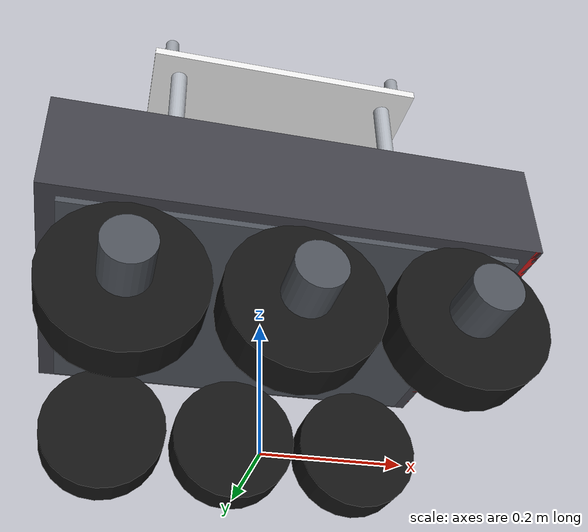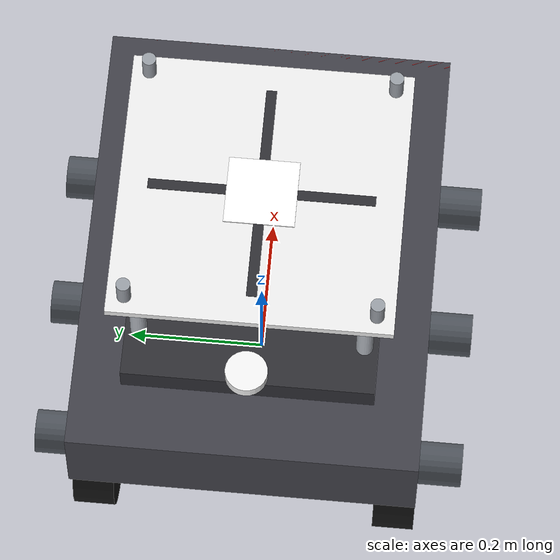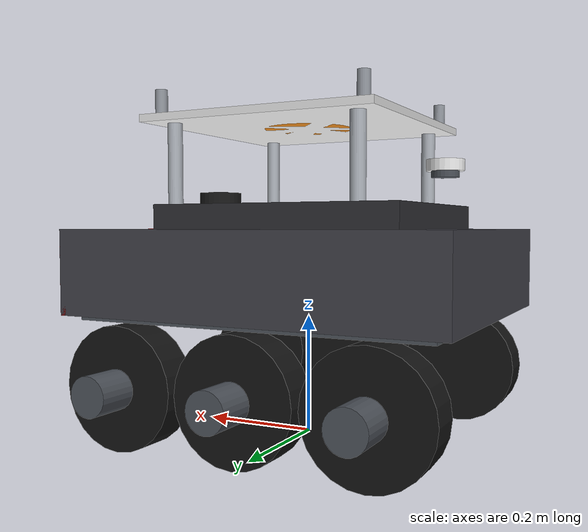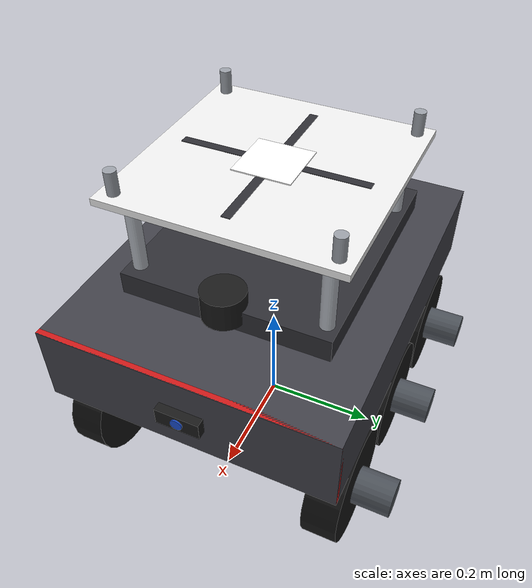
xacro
<?xml version="1.0"?>
<robot name="windmill_ugv" xmlns:xacro="http://www.ros.org/wiki/xacro">

  <!-- Order matters: dimensions first, then everything else -->
  <xacro:include filename="$(find windmill_robot_description)/urdf/dimensions.xacro"/>
  <xacro:include filename="$(find windmill_robot_description)/urdf/materials.xacro"/>
  <xacro:include filename="$(find windmill_robot_description)/urdf/chassis.xacro"/>
  <xacro:include filename="$(find windmill_robot_description)/urdf/wheel.xacro"/>
  <xacro:include filename="$(find windmill_robot_description)/urdf/suspension.xacro"/>
  <xacro:include filename="$(find windmill_robot_description)/urdf/landing_pad.xacro"/>
  <xacro:include filename="$(find windmill_robot_description)/urdf/sensors.xacro"/>
  <xacro:include filename="$(find windmill_robot_description)/urdf/electronics.xacro"/>
  <xacro:include filename="$(find windmill_robot_description)/urdf/gazebo.xacro"/>

  <xacro:drive_wheel name="front_left"
    x="${wheel_x_front}"  y="${wheel_y_left}"  z="${wheel_center_z}" side="left" motor_sign="1"/>

  <xacro:drive_wheel name="middle_left"
    x="${wheel_x_middle}" y="${wheel_y_left}"  z="${wheel_center_z}" side="left" motor_sign="1"/>

  <xacro:drive_wheel name="rear_left"
    x="${wheel_x_rear}"   y="${wheel_y_left}"  z="${wheel_center_z}" side="left" motor_sign="1"/>

  <xacro:drive_wheel name="front_right"
    x="${wheel_x_front}"  y="${wheel_y_right}" z="${wheel_center_z}" side="right" motor_sign="-1"/>

  <xacro:drive_wheel name="middle_right"
    x="${wheel_x_middle}" y="${wheel_y_right}" z="${wheel_center_z}" side="right" motor_sign="-1"/>

  <xacro:drive_wheel name="rear_right"
    x="${wheel_x_rear}"   y="${wheel_y_right}" z="${wheel_center_z}" side="right" motor_sign="-1"/>

  <!-- Wheel centre frames (for future odometry / suspension work) -->
  <link name="front_left_wheel_frame"/>
  <joint name="front_left_wheel_frame_joint" type="fixed">
    <parent link="front_left_wheel"/><child link="front_left_wheel_frame"/>
    <origin xyz="0 0 0" rpy="0 0 0"/>
  </joint>

  <link name="middle_left_wheel_frame"/>
  <joint name="middle_left_wheel_frame_joint" type="fixed">
    <parent link="middle_left_wheel"/><child link="middle_left_wheel_frame"/>
    <origin xyz="0 0 0" rpy="0 0 0"/>
  </joint>

  <link name="rear_left_wheel_frame"/>
  <joint name="rear_left_wheel_frame_joint" type="fixed">
    <parent link="rear_left_wheel"/><child link="rear_left_wheel_frame"/>
    <origin xyz="0 0 0" rpy="0 0 0"/>
  </joint>

  <link name="front_right_wheel_frame"/>
  <joint name="front_right_wheel_frame_joint" type="fixed">
    <parent link="front_right_wheel"/><child link="front_right_wheel_frame"/>
    <origin xyz="0 0 0" rpy="0 0 0"/>
  </joint>

  <link name="middle_right_wheel_frame"/>
  <joint name="middle_right_wheel_frame_joint" type="fixed">
    <parent link="middle_right_wheel"/><child link="middle_right_wheel_frame"/>
    <origin xyz="0 0 0" rpy="0 0 0"/>
  </joint>

  <link name="rear_right_wheel_frame"/>
  <joint name="rear_right_wheel_frame_joint" type="fixed">
    <parent link="rear_right_wheel"/><child link="rear_right_wheel_frame"/>
    <origin xyz="0 0 0" rpy="0 0 0"/>
  </joint>

</robot>

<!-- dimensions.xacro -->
<robot xmlns:xacro="http://www.ros.org/wiki/xacro" name="windmill_ugv_dimensions">
  <!-- Note: pi is built into xacro — do not redefine it -->

  <!-- track_width: centre-to-centre distance between left and right wheels -->
  <xacro:property name="track_width" value="0.440"/>

  <xacro:property name="chassis_length"    value="0.650"/>
  <xacro:property name="chassis_width"     value="0.500"/>
  <xacro:property name="chassis_height"    value="0.140"/>
  <xacro:property name="chassis_bottom_z"  value="0.210"/>
  <xacro:property name="chassis_top_z"     value="${chassis_bottom_z + chassis_height}"/>
  <xacro:property name="chassis_centre_z"  value="${chassis_bottom_z + chassis_height/2.0}"/>

  <!-- Underbody skid plate (thin protective plate under chassis) -->
  <xacro:property name="underbody_thickness" value="0.008"/>
  <xacro:property name="underbody_length"    value="0.600"/>
  <xacro:property name="underbody_width"     value="0.460"/>

  <xacro:property name="wheel_radius"    value="0.100"/>
  <xacro:property name="wheel_width"     value="0.060"/>
  <xacro:property name="wheel_center_z"  value="${wheel_radius}"/>

  <!-- Wheel positions -->
  <xacro:property name="wheel_x_front"  value=" 0.210"/>
  <xacro:property name="wheel_x_middle" value=" 0.000"/>
  <xacro:property name="wheel_x_rear"   value="-0.210"/>
  <xacro:property name="wheel_y_left"   value=" 0.220"/>  <!-- half track + half wheel_width -->
  <xacro:property name="wheel_y_right"  value="-0.220"/>

  <!-- Ground clearance (bottom of chassis above ground) -->
  <xacro:property name="ground_clearance" value="${chassis_bottom_z}"/>

  <xacro:property name="landing_pad_length"    value="0.400"/>
  <xacro:property name="landing_pad_width"     value="0.400"/>
  <xacro:property name="landing_pad_thickness" value="0.012"/>
  <xacro:property name="landing_pad_z"         value="0.520"/>  <!-- underside of pad above ground -->

  <!-- Support posts: from chassis top to pad underside -->
  <xacro:property name="landing_post_radius"   value="0.012"/>
  <xacro:property name="landing_post_height"   value="${landing_pad_z - chassis_top_z}"/>
  <xacro:property name="landing_post_offset_x" value="0.160"/>
  <xacro:property name="landing_post_offset_y" value="0.160"/>

  <!-- Landing guides (corner bumpers on pad surface) -->
  <xacro:property name="landing_guide_radius"   value="0.010"/>
  <xacro:property name="landing_guide_height"   value="0.040"/>
  <xacro:property name="landing_guide_offset_x" value="0.175"/>
  <xacro:property name="landing_guide_offset_y" value="0.175"/>

  <!-- ============================================================
       CHARGING COIL + FIDUCIAL MARKER
  ============================================================ -->
  <xacro:property name="charging_coil_diameter"  value="0.150"/>
  <xacro:property name="charging_coil_thickness" value="0.006"/>
  <xacro:property name="fiducial_marker_size"     value="0.100"/>
  <xacro:property name="fiducial_marker_thickness" value="0.002"/>

  <!-- ============================================================
       SENSORS
  ============================================================ -->
  <!-- LiDAR: front-centre, above chassis top, unobstructed 360 deg -->
  <xacro:property name="lidar_x"       value="0.180"/>
  <xacro:property name="lidar_z"       value="${chassis_top_z + 0.060}"/>
  <xacro:property name="lidar_radius"  value="0.037"/>
  <xacro:property name="lidar_height_dim" value="0.050"/>

  <!-- Camera: front face of chassis, pointing forward -->
  <xacro:property name="camera_x"     value="0.330"/>
  <xacro:property name="camera_z"     value="${chassis_centre_z + 0.020}"/>

  <!-- IMU: chassis centre -->
  <xacro:property name="imu_z"        value="${chassis_centre_z}"/>

  <!-- GPS: rear top, clear sky view, away from landing pad centre -->
  <xacro:property name="gps_x"        value="-0.240"/>
  <xacro:property name="gps_z"        value="${chassis_top_z + 0.100}"/>

  <!-- Sensor mast (cylinder holding LiDAR above chassis) -->
  <xacro:property name="sensor_mast_radius" value="0.020"/>
  <xacro:property name="sensor_mast_height" value="0.040"/>

  <!-- ============================================================
       ELECTRONICS ENVELOPES
  ============================================================ -->
  <xacro:property name="jetson_length" value="0.180"/>
  <xacro:property name="jetson_width"  value="0.130"/>
  <xacro:property name="jetson_height" value="0.060"/>

  <xacro:property name="battery_length" value="0.220"/>
  <xacro:property name="battery_width"  value="0.120"/>
  <xacro:property name="battery_height" value="0.070"/>

  <xacro:property name="arduino_mega_length" value="0.110"/>
  <xacro:property name="arduino_mega_width"  value="0.060"/>
  <xacro:property name="arduino_mega_height" value="0.025"/>

  <xacro:property name="arduino_nano_length" value="0.045"/>
  <xacro:property name="arduino_nano_width"  value="0.020"/>
  <xacro:property name="arduino_nano_height" value="0.010"/>

  <xacro:property name="motor_driver_length" value="0.090"/>
  <xacro:property name="motor_driver_width"  value="0.060"/>
  <xacro:property name="motor_driver_height" value="0.025"/>

  <xacro:property name="pdu_length" value="0.100"/>
  <xacro:property name="pdu_width"  value="0.070"/>
  <xacro:property name="pdu_height" value="0.025"/>

  <xacro:property name="buck_length" value="0.060"/>
  <xacro:property name="buck_width"  value="0.040"/>
  <xacro:property name="buck_height" value="0.020"/>

  <xacro:property name="boost_length" value="0.060"/>
  <xacro:property name="boost_width"  value="0.040"/>
  <xacro:property name="boost_height" value="0.020"/>

  <xacro:property name="ups_length" value="0.100"/>
  <xacro:property name="ups_width"  value="0.070"/>
  <xacro:property name="ups_height" value="0.025"/>

  <xacro:property name="enclosure_length" value="0.420"/>
  <xacro:property name="enclosure_width"  value="0.360"/>
  <xacro:property name="enclosure_height" value="0.110"/>

  <!-- Motor placeholder -->
  <xacro:property name="motor_radius" value="0.032"/>
  <xacro:property name="motor_length" value="0.065"/>

  <!-- ============================================================
       MASS ASSUMPTIONS [kg]
       Total target: ~22 kg
  ============================================================ -->
  <xacro:property name="chassis_mass"       value="6.80"/>
  <xacro:property name="underbody_mass"     value="0.60"/>
  <xacro:property name="wheel_mass"         value="0.80"/>
  <xacro:property name="motor_mass"         value="0.55"/>
  <xacro:property name="landing_pad_mass"   value="0.80"/>
  <xacro:property name="landing_post_mass"  value="0.08"/>
  <xacro:property name="landing_guide_mass" value="0.03"/>
  <xacro:property name="battery_mass"       value="2.20"/>
  <xacro:property name="jetson_mass"        value="0.50"/>
  <xacro:property name="arduino_mega_mass"  value="0.04"/>
  <xacro:property name="arduino_nano_mass"  value="0.01"/>
  <xacro:property name="motor_driver_mass"  value="0.15"/>
  <xacro:property name="pdu_mass"           value="0.12"/>
  <xacro:property name="buck_mass"          value="0.08"/>
  <xacro:property name="boost_mass"         value="0.08"/>
  <xacro:property name="ups_mass"           value="0.15"/>
  <xacro:property name="lidar_mass"         value="0.35"/>
  <xacro:property name="camera_mass"        value="0.10"/>
  <xacro:property name="imu_mass"           value="0.03"/>
  <xacro:property name="gps_mass"           value="0.08"/>
  <xacro:property name="charging_coil_mass" value="0.20"/>
  <xacro:property name="fiducial_mass"      value="0.005"/>
  <xacro:property name="sensor_mount_mass"  value="0.15"/>
  <xacro:property name="misc_mass"          value="0.90"/>

</robot>

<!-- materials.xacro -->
<!--
  materials.xacro
  ===============
  Visual material definitions for RViz and Gazebo.
-->
<robot xmlns:xacro="http://www.ros.org/wiki/xacro" name="windmill_ugv_materials">

  <!-- Chassis / structure -->
  <material name="chassis_gray">
    <color rgba="0.25 0.25 0.28 1.0"/>
  </material>
  <material name="metal">
    <color rgba="0.60 0.62 0.65 1.0"/>
  </material>
  <material name="metal_dark">
    <color rgba="0.30 0.32 0.35 1.0"/>
  </material>

  <!-- Wheels -->
  <material name="rubber_black">
    <color rgba="0.08 0.08 0.08 1.0"/>
  </material>
  <material name="wheel_hub">
    <color rgba="0.50 0.50 0.55 1.0"/>
  </material>

  <!-- Landing platform -->
  <material name="landing_white">
    <color rgba="0.92 0.92 0.92 1.0"/>
  </material>
  <material name="landing_dark">
    <color rgba="0.18 0.18 0.20 1.0"/>
  </material>
  <material name="post_silver">
    <color rgba="0.70 0.72 0.75 1.0"/>
  </material>

  <!-- Sensors -->
  <material name="sensor_black">
    <color rgba="0.10 0.10 0.10 1.0"/>
  </material>
  <material name="sensor_blue">
    <color rgba="0.10 0.30 0.80 1.0"/>
  </material>

  <!-- Electronics -->
  <material name="electronics_green">
    <color rgba="0.10 0.50 0.20 1.0"/>
  </material>
  <material name="electronics_blue">
    <color rgba="0.10 0.20 0.70 1.0"/>
  </material>
  <material name="battery_color">
    <color rgba="0.15 0.35 0.65 1.0"/>
  </material>
  <material name="orange_comp">
    <color rgba="0.90 0.45 0.05 1.0"/>
  </material>

  <!-- Special -->
  <material name="coil_copper">
    <color rgba="0.85 0.50 0.10 1.0"/>
  </material>
  <material name="fiducial_white">
    <color rgba="1.00 1.00 1.00 1.0"/>
  </material>
  <material name="gps_white">
    <color rgba="0.95 0.95 0.95 1.0"/>
  </material>
  <material name="red_accent">
    <color rgba="0.80 0.10 0.10 1.0"/>
  </material>

</robot>

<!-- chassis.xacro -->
<robot xmlns:xacro="http://www.ros.org/wiki/xacro" name="windmill_ugv_chassis">

  <!-- Box inertia helper -->
  <xacro:macro name="inertial_box" params="mass x y z xyz:='0 0 0' rpy:='0 0 0'">
    <inertial>
      <origin xyz="${xyz}" rpy="${rpy}"/>
      <mass value="${mass}"/>
      <inertia
        ixx="${mass/12.0*(y*y+z*z)}" ixy="0" ixz="0"
        iyy="${mass/12.0*(x*x+z*z)}" iyz="0"
        izz="${mass/12.0*(x*x+y*y)}"/>
    </inertial>
  </xacro:macro>

  <!-- ============================================================
       base_footprint — Nav2 ground-plane reference
  ============================================================ -->
  <link name="base_footprint"/>

  <!-- ============================================================
       base_link — primary robot reference frame at ground level
  ============================================================ -->
  <link name="base_link">
    <!-- Physical chassis geometry lives here.
         Visual/collision centre at chassis_centre_z above ground. -->
    <xacro:inertial_box
      mass="${chassis_mass}"
      x="${chassis_length}" y="${chassis_width}" z="${chassis_height}"
      xyz="0 0 ${chassis_centre_z}"/>

    <!-- Main body box -->
    <visual>
      <origin xyz="0 0 ${chassis_centre_z}" rpy="0 0 0"/>
      <geometry>
        <box size="${chassis_length} ${chassis_width} ${chassis_height}"/>
      </geometry>
      <material name="chassis_gray"/>
    </visual>
    <collision>
      <origin xyz="0 0 ${chassis_centre_z}" rpy="0 0 0"/>
      <geometry>
        <box size="${chassis_length} ${chassis_width} ${chassis_height}"/>
      </geometry>
    </collision>

    <!-- Front accent stripe (visual only, makes front direction obvious) -->
    <visual>
      <origin xyz="${chassis_length/2.0 - 0.005} 0 ${chassis_centre_z}" rpy="0 0 0"/>
      <geometry>
        <box size="0.010 ${chassis_width} ${chassis_height}"/>
      </geometry>
      <material name="red_accent"/>
    </visual>

  </link>

  <joint name="base_footprint_joint" type="fixed">
    <parent link="base_footprint"/>
    <child  link="base_link"/>
    <origin xyz="0 0 0" rpy="0 0 0"/>
  </joint>

  <!-- chassis_link: fixed alias of base_link (Nav2 compatibility) -->
  <link name="chassis_link">
    <inertial>
      <origin xyz="0 0 0"/>
      <mass value="0.001"/>
      <inertia ixx="0.0001" ixy="0" ixz="0" iyy="0.0001" iyz="0" izz="0.0001"/>
    </inertial>
  </link>
  <joint name="base_to_chassis" type="fixed">
    <parent link="base_link"/>
    <child  link="chassis_link"/>
    <origin xyz="0 0 0" rpy="0 0 0"/>
  </joint>

  <link name="underbody_skid_link">
    <xacro:inertial_box
      mass="${underbody_mass}"
      x="${underbody_length}" y="${underbody_width}" z="${underbody_thickness}"
      xyz="0 0 ${chassis_bottom_z - underbody_thickness/2.0}"/>
    <visual>
      <origin xyz="0 0 ${chassis_bottom_z - underbody_thickness/2.0}"/>
      <geometry>
        <box size="${underbody_length} ${underbody_width} ${underbody_thickness}"/>
      </geometry>
      <material name="metal_dark"/>
    </visual>
    <collision>
      <origin xyz="0 0 ${chassis_bottom_z - underbody_thickness/2.0}"/>
      <geometry>
        <box size="${underbody_length} ${underbody_width} ${underbody_thickness}"/>
      </geometry>
    </collision>
  </link>
  <joint name="underbody_skid_joint" type="fixed">
    <parent link="base_link"/>
    <child  link="underbody_skid_link"/>
    <origin xyz="0 0 0" rpy="0 0 0"/>
  </joint>

  <link name="electronics_enclosure_link">
    <inertial>
      <origin xyz="0 0 0"/>
      <mass value="${misc_mass}"/>
      <inertia
        ixx="${misc_mass/12.0*(enclosure_width*enclosure_width + 0.040*0.040)}"
        ixy="0" ixz="0"
        iyy="${misc_mass/12.0*(enclosure_length*enclosure_length + 0.040*0.040)}"
        iyz="0"
        izz="${misc_mass/12.0*(enclosure_length*enclosure_length + enclosure_width*enclosure_width)}"/>
    </inertial>
    <visual>
      <origin xyz="0 0 0.020"/>
      <geometry>
        <box size="${enclosure_length} ${enclosure_width} 0.040"/>
      </geometry>
      <material name="landing_dark"/>
    </visual>
    <!-- No collision — sits inside chassis envelope -->
  </link>
  <joint name="electronics_enclosure_joint" type="fixed">
    <parent link="base_link"/>
    <child  link="electronics_enclosure_link"/>
    <origin xyz="-0.020 0 ${chassis_top_z}" rpy="0 0 0"/>
  </joint>

</robot>

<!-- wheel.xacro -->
<robot xmlns:xacro="http://www.ros.org/wiki/xacro" name="windmill_ugv_wheels">

  <!-- Cylinder inertia helper (axis along Y after visual rotation) -->
  <xacro:macro name="wheel_inertial" params="mass radius width">
    <inertial>
      <origin xyz="0 0 0" rpy="0 0 0"/>
      <mass value="${mass}"/>
      <inertia
        ixx="${mass/12.0*(3.0*radius*radius + width*width)}"
        ixy="0" ixz="0"
        iyy="${mass/2.0*radius*radius}"
        iyz="0"
        izz="${mass/12.0*(3.0*radius*radius + width*width)}"/>
    </inertial>
  </xacro:macro>

  <xacro:macro name="drive_wheel" params="name x y z side motor_sign">

    <!-- TYRE: outer rubber cylinder, full radius -->
    <link name="${name}_wheel">
      <xacro:wheel_inertial mass="${wheel_mass}" radius="${wheel_radius}" width="${wheel_width}"/>

      <!-- Outer tyre — black rubber -->
      <visual>
        <origin xyz="0 0 0" rpy="${pi/2.0} 0 0"/>
        <geometry>
          <cylinder radius="${wheel_radius}" length="${wheel_width}"/>
        </geometry>
        <material name="rubber_black"/>
      </visual>

      <!-- Hub disc — silver, slightly inset -->
      <visual>
        <origin xyz="0 0 0" rpy="${pi/2.0} 0 0"/>
        <geometry>
          <cylinder radius="${wheel_radius * 0.55}" length="${wheel_width * 0.35}"/>
        </geometry>
        <material name="wheel_hub"/>
      </visual>

      <!-- Collision uses full tyre size -->
      <collision>
        <origin xyz="0 0 0" rpy="${pi/2.0} 0 0"/>
        <geometry>
          <cylinder radius="${wheel_radius}" length="${wheel_width}"/>
        </geometry>
      </collision>
    </link>

    <joint name="${name}_wheel_joint" type="continuous">
      <parent link="base_link"/>
      <child  link="${name}_wheel"/>
      <origin xyz="${x} ${y} ${z}" rpy="0 0 0"/>
      <axis xyz="0 1 0"/>
      <limit effort="20.0" velocity="25.0"/>
      <dynamics damping="0.15" friction="0.05"/>
    </joint>

    <!-- MOTOR PLACEHOLDER: fixed joint, inboard of wheel -->
    <link name="${name}_motor">
      <inertial>
        <origin xyz="0 0 0" rpy="${pi/2.0} 0 0"/>
        <mass value="${motor_mass}"/>
        <inertia
          ixx="${motor_mass/12.0*(motor_length*motor_length + 4*motor_radius*motor_radius)}"
          ixy="0" ixz="0"
          iyy="${motor_mass/2.0*motor_radius*motor_radius}"
          iyz="0"
          izz="${motor_mass/12.0*(motor_length*motor_length + 4*motor_radius*motor_radius)}"/>
      </inertial>
      <visual>
        <origin xyz="0 0 0" rpy="${pi/2.0} 0 0"/>
        <geometry>
          <cylinder radius="${motor_radius}" length="${motor_length}"/>
        </geometry>
        <material name="metal_dark"/>
      </visual>
      <collision>
        <origin xyz="0 0 0" rpy="${pi/2.0} 0 0"/>
        <geometry>
          <cylinder radius="${motor_radius}" length="${motor_length}"/>
        </geometry>
      </collision>
    </link>

    <joint name="${name}_motor_fixed_joint" type="fixed">
      <parent link="base_link"/>
      <child  link="${name}_motor"/>
      <origin
        xyz="${x} ${y + motor_sign * (0.5*wheel_width + 0.5*motor_length)} ${z}"
        rpy="0 0 0"/>
    </joint>

  </xacro:macro>

</robot>

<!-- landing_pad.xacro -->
<robot xmlns:xacro="http://www.ros.org/wiki/xacro" name="windmill_ugv_landing_pad">

  <!-- ============================================================
       LANDING PLATFORM SURFACE
  ============================================================ -->
  <link name="landing_platform_link">
    <inertial>
      <origin xyz="0 0 ${landing_pad_thickness/2.0}"/>
      <mass value="${landing_pad_mass}"/>
      <inertia
        ixx="${landing_pad_mass/12.0*(landing_pad_width*landing_pad_width + landing_pad_thickness*landing_pad_thickness)}"
        ixy="0" ixz="0"
        iyy="${landing_pad_mass/12.0*(landing_pad_length*landing_pad_length + landing_pad_thickness*landing_pad_thickness)}"
        iyz="0"
        izz="${landing_pad_mass/12.0*(landing_pad_length*landing_pad_length + landing_pad_width*landing_pad_width)}"/>
    </inertial>

    <!-- Main pad surface (white) -->
    <visual>
      <origin xyz="0 0 ${landing_pad_thickness/2.0}"/>
      <geometry>
        <box size="${landing_pad_length} ${landing_pad_width} ${landing_pad_thickness}"/>
      </geometry>
      <material name="landing_white"/>
    </visual>

    <!-- H-pattern markings on pad (visual only, 4 thin bars) -->
    <visual>
      <origin xyz="0 0 ${landing_pad_thickness + 0.001}"/>
      <geometry>
        <box size="${landing_pad_length * 0.80} 0.015 0.001"/>
      </geometry>
      <material name="landing_dark"/>
    </visual>
    <visual>
      <origin xyz="0 0 ${landing_pad_thickness + 0.001}"/>
      <geometry>
        <box size="0.015 ${landing_pad_width * 0.80} 0.001"/>
      </geometry>
      <material name="landing_dark"/>
    </visual>

    <collision>
      <origin xyz="0 0 ${landing_pad_thickness/2.0}"/>
      <geometry>
        <box size="${landing_pad_length} ${landing_pad_width} ${landing_pad_thickness}"/>
      </geometry>
    </collision>
  </link>

  <!-- Pad connects to base_link with its underside at landing_pad_z -->
  <joint name="landing_platform_joint" type="fixed">
    <parent link="base_link"/>
    <child  link="landing_platform_link"/>
    <origin xyz="0 0 ${landing_pad_z}" rpy="0 0 0"/>
  </joint>

  <xacro:macro name="landing_post" params="name px py">
    <link name="${name}_link">
      <inertial>
        <origin xyz="0 0 ${landing_post_height/2.0}"/>
        <mass value="${landing_post_mass}"/>
        <inertia
          ixx="${landing_post_mass/12.0*(3*landing_post_radius*landing_post_radius + landing_post_height*landing_post_height)}"
          ixy="0" ixz="0"
          iyy="${landing_post_mass/12.0*(3*landing_post_radius*landing_post_radius + landing_post_height*landing_post_height)}"
          iyz="0"
          izz="${0.5*landing_post_mass*landing_post_radius*landing_post_radius}"/>
      </inertial>
      <visual>
        <origin xyz="0 0 ${landing_post_height/2.0}"/>
        <geometry>
          <cylinder radius="${landing_post_radius}" length="${landing_post_height}"/>
        </geometry>
        <material name="post_silver"/>
      </visual>
      <collision>
        <origin xyz="0 0 ${landing_post_height/2.0}"/>
        <geometry>
          <cylinder radius="${landing_post_radius}" length="${landing_post_height}"/>
        </geometry>
      </collision>
    </link>
    <!-- Post base at chassis_top_z in base_link frame -->
    <joint name="${name}_joint" type="fixed">
      <parent link="base_link"/>
      <child  link="${name}_link"/>
      <origin xyz="${px} ${py} ${chassis_top_z}" rpy="0 0 0"/>
    </joint>
  </xacro:macro>

  <xacro:landing_post name="post_fl" px=" ${landing_post_offset_x}" py=" ${landing_post_offset_y}"/>
  <xacro:landing_post name="post_fr" px=" ${landing_post_offset_x}" py="-${landing_post_offset_y}"/>
  <xacro:landing_post name="post_rl" px="-${landing_post_offset_x}" py=" ${landing_post_offset_y}"/>
  <xacro:landing_post name="post_rr" px="-${landing_post_offset_x}" py="-${landing_post_offset_y}"/>

  <!-- ============================================================
       LANDING GUIDES (4x corner bumpers on pad surface)
  ============================================================ -->
  <xacro:macro name="landing_guide" params="name gx gy">
    <link name="${name}_link">
      <inertial>
        <origin xyz="0 0 ${landing_guide_height/2.0}"/>
        <mass value="${landing_guide_mass}"/>
        <inertia
          ixx="${landing_guide_mass/12.0*(3*landing_guide_radius*landing_guide_radius + landing_guide_height*landing_guide_height)}"
          ixy="0" ixz="0"
          iyy="${landing_guide_mass/12.0*(3*landing_guide_radius*landing_guide_radius + landing_guide_height*landing_guide_height)}"
          iyz="0"
          izz="${0.5*landing_guide_mass*landing_guide_radius*landing_guide_radius}"/>
      </inertial>
      <visual>
        <origin xyz="0 0 ${landing_guide_height/2.0}"/>
        <geometry>
          <cylinder radius="${landing_guide_radius}" length="${landing_guide_height}"/>
        </geometry>
        <material name="metal"/>
      </visual>
      <collision>
        <origin xyz="0 0 ${landing_guide_height/2.0}"/>
        <geometry>
          <cylinder radius="${landing_guide_radius}" length="${landing_guide_height}"/>
        </geometry>
      </collision>
    </link>
    <joint name="${name}_joint" type="fixed">
      <parent link="landing_platform_link"/>
      <child  link="${name}_link"/>
      <origin xyz="${gx} ${gy} ${landing_pad_thickness}" rpy="0 0 0"/>
    </joint>
  </xacro:macro>

  <xacro:landing_guide name="guide_fl" gx=" ${landing_guide_offset_x}" gy=" ${landing_guide_offset_y}"/>
  <xacro:landing_guide name="guide_fr" gx=" ${landing_guide_offset_x}" gy="-${landing_guide_offset_y}"/>
  <xacro:landing_guide name="guide_rl" gx="-${landing_guide_offset_x}" gy=" ${landing_guide_offset_y}"/>
  <xacro:landing_guide name="guide_rr" gx="-${landing_guide_offset_x}" gy="-${landing_guide_offset_y}"/>

  <!-- ============================================================
       CHARGING COIL PLACEHOLDER
       Embedded in pad surface, centred.
  ============================================================ -->
  <link name="charging_coil_link">
    <inertial>
      <origin xyz="0 0 ${charging_coil_thickness/2.0}"/>
      <mass value="${charging_coil_mass}"/>
      <inertia
        ixx="${charging_coil_mass/12.0*(3*(charging_coil_diameter/2.0)**2 + charging_coil_thickness**2)}"
        ixy="0" ixz="0"
        iyy="${charging_coil_mass/12.0*(3*(charging_coil_diameter/2.0)**2 + charging_coil_thickness**2)}"
        iyz="0"
        izz="${0.5*charging_coil_mass*(charging_coil_diameter/2.0)**2}"/>
    </inertial>
    <visual>
      <origin xyz="0 0 ${charging_coil_thickness/2.0}"/>
      <geometry>
        <cylinder radius="${charging_coil_diameter/2.0}" length="${charging_coil_thickness}"/>
      </geometry>
      <material name="coil_copper"/>
    </visual>
    <!-- No collision — embedded in pad -->
  </link>
  <joint name="charging_coil_joint" type="fixed">
    <parent link="landing_platform_link"/>
    <child  link="charging_coil_link"/>
    <origin xyz="0 0 0" rpy="0 0 0"/>
  </joint>

  <link name="charging_coil_frame"/>
  <joint name="charging_coil_frame_joint" type="fixed">
    <parent link="charging_coil_link"/>
    <child  link="charging_coil_frame"/>
    <origin xyz="0 0 ${charging_coil_thickness}" rpy="0 0 0"/>
  </joint>

  <!-- ============================================================
       FIDUCIAL MARKER PLACEHOLDER (AprilTag / ArUco)
  ============================================================ -->
  <link name="fiducial_marker_link">
    <inertial>
      <origin xyz="0 0 ${fiducial_marker_thickness/2.0}"/>
      <mass value="${fiducial_mass}"/>
      <inertia
        ixx="${fiducial_mass/12.0*(fiducial_marker_size*fiducial_marker_size + fiducial_marker_thickness*fiducial_marker_thickness)}"
        ixy="0" ixz="0"
        iyy="${fiducial_mass/12.0*(fiducial_marker_size*fiducial_marker_size + fiducial_marker_thickness*fiducial_marker_thickness)}"
        iyz="0"
        izz="${fiducial_mass/6.0*fiducial_marker_size*fiducial_marker_size}"/>
    </inertial>
    <visual>
      <origin xyz="0 0 ${fiducial_marker_thickness/2.0}"/>
      <geometry>
        <box size="${fiducial_marker_size} ${fiducial_marker_size} ${fiducial_marker_thickness}"/>
      </geometry>
      <material name="fiducial_white"/>
    </visual>
    <!-- No collision -->
  </link>
  <joint name="fiducial_marker_joint" type="fixed">
    <parent link="landing_platform_link"/>
    <child  link="fiducial_marker_link"/>
    <origin xyz="0 0 ${landing_pad_thickness + 0.001}" rpy="0 0 0"/>
  </joint>

  <link name="fiducial_marker_frame"/>
  <joint name="fiducial_marker_frame_joint" type="fixed">
    <parent link="fiducial_marker_link"/>
    <child  link="fiducial_marker_frame"/>
    <origin xyz="0 0 ${fiducial_marker_thickness}" rpy="0 0 0"/>
  </joint>

  <link name="drone_dock_frame"/>
  <joint name="drone_dock_frame_joint" type="fixed">
    <parent link="landing_platform_link"/>
    <child  link="drone_dock_frame"/>
    <origin xyz="0 0 ${landing_pad_thickness + 0.010}" rpy="0 0 0"/>
  </joint>

</robot>

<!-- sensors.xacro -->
<!--
  sensors.xacro
  =============
  LiDAR, camera, IMU, GPS — physical links and frames.
  Gazebo sensor plugins live in gazebo.xacro.

  All heights corrected to sit above chassis_top_z.
-->
<robot xmlns:xacro="http://www.ros.org/wiki/xacro" name="windmill_ugv_sensors">

  <!-- ============================================================
       SENSOR MAST (small cylinder on chassis top supporting LiDAR)
  ============================================================ -->
  <link name="sensor_mast_link">
    <inertial>
      <origin xyz="0 0 ${sensor_mast_height/2.0}"/>
      <mass value="${sensor_mount_mass}"/>
      <inertia
        ixx="${sensor_mount_mass/12.0*(3*sensor_mast_radius*sensor_mast_radius + sensor_mast_height*sensor_mast_height)}"
        ixy="0" ixz="0"
        iyy="${sensor_mount_mass/12.0*(3*sensor_mast_radius*sensor_mast_radius + sensor_mast_height*sensor_mast_height)}"
        iyz="0"
        izz="${0.5*sensor_mount_mass*sensor_mast_radius*sensor_mast_radius}"/>
    </inertial>
    <visual>
      <origin xyz="0 0 ${sensor_mast_height/2.0}"/>
      <geometry>
        <cylinder radius="${sensor_mast_radius}" length="${sensor_mast_height}"/>
      </geometry>
      <material name="metal_dark"/>
    </visual>
    <collision>
      <origin xyz="0 0 ${sensor_mast_height/2.0}"/>
      <geometry>
        <cylinder radius="${sensor_mast_radius}" length="${sensor_mast_height}"/>
      </geometry>
    </collision>
  </link>
  <joint name="sensor_mast_joint" type="fixed">
    <parent link="base_link"/>
    <child  link="sensor_mast_link"/>
    <origin xyz="${lidar_x} 0 ${chassis_top_z}" rpy="0 0 0"/>
  </joint>

  <link name="lidar_link">
    <inertial>
      <origin xyz="0 0 0"/>
      <mass value="${lidar_mass}"/>
      <inertia
        ixx="${lidar_mass/12.0*(3*lidar_radius*lidar_radius + lidar_height_dim*lidar_height_dim)}"
        ixy="0" ixz="0"
        iyy="${lidar_mass/12.0*(3*lidar_radius*lidar_radius + lidar_height_dim*lidar_height_dim)}"
        iyz="0"
        izz="${0.5*lidar_mass*lidar_radius*lidar_radius}"/>
    </inertial>
    <visual>
      <geometry>
        <cylinder radius="${lidar_radius}" length="${lidar_height_dim}"/>
      </geometry>
      <material name="sensor_black"/>
    </visual>
    <collision>
      <geometry>
        <cylinder radius="${lidar_radius}" length="${lidar_height_dim}"/>
      </geometry>
    </collision>
  </link>
  <joint name="lidar_joint" type="fixed">
    <parent link="base_link"/>
    <child  link="lidar_link"/>
    <origin xyz="${lidar_x} 0 ${chassis_top_z + sensor_mast_height}" rpy="0 0 0"/>
  </joint>

  <!-- lidar_frame: sensor measurement origin (top of cylinder) -->
  <link name="lidar_frame"/>
  <joint name="lidar_frame_joint" type="fixed">
    <parent link="lidar_link"/>
    <child  link="lidar_frame"/>
    <origin xyz="0 0 ${lidar_height_dim/2.0}" rpy="0 0 0"/>
  </joint>

  <!-- ============================================================
       CAMERA — Logitech C270 (forward facing, front of chassis)
  ============================================================ -->
  <link name="camera_link">
    <inertial>
      <origin xyz="0 0 0"/>
      <mass value="${camera_mass}"/>
      <inertia
        ixx="${camera_mass/12.0*(0.030*0.030 + 0.030*0.030)}"
        ixy="0" ixz="0"
        iyy="${camera_mass/12.0*(0.065*0.065 + 0.030*0.030)}"
        iyz="0"
        izz="${camera_mass/12.0*(0.065*0.065 + 0.030*0.030)}"/>
    </inertial>
    <!-- Camera body (wide, slim box) -->
    <visual>
      <geometry>
        <box size="0.030 0.075 0.030"/>
      </geometry>
      <material name="sensor_black"/>
    </visual>
    <!-- Lens circle indicator -->
    <visual>
      <origin xyz="0.015 0 0" rpy="0 ${pi/2.0} 0"/>
      <geometry>
        <cylinder radius="0.010" length="0.005"/>
      </geometry>
      <material name="sensor_blue"/>
    </visual>
    <collision>
      <geometry>
        <box size="0.030 0.075 0.030"/>
      </geometry>
    </collision>
  </link>
  <joint name="camera_joint" type="fixed">
    <parent link="base_link"/>
    <child  link="camera_link"/>
    <origin xyz="${chassis_length/2.0} 0 ${chassis_centre_z}" rpy="0 0 0"/>
  </joint>

  <!-- camera_frame: REP-103 optical (+Z forward, +X right, +Y down) -->
  <link name="camera_frame"/>
  <joint name="camera_frame_joint" type="fixed">
    <parent link="camera_link"/>
    <child  link="camera_frame"/>
    <origin xyz="0 0 0" rpy="-${pi/2.0} 0 -${pi/2.0}"/>
  </joint>

  <!-- ============================================================
       IMU — chassis centre
  ============================================================ -->
  <link name="imu_link">
    <inertial>
      <origin xyz="0 0 0"/>
      <mass value="${imu_mass}"/>
      <inertia
        ixx="${imu_mass/12.0*(0.035*0.035 + 0.010*0.010)}"
        ixy="0" ixz="0"
        iyy="${imu_mass/12.0*(0.025*0.025 + 0.010*0.010)}"
        iyz="0"
        izz="${imu_mass/12.0*(0.035*0.035 + 0.025*0.025)}"/>
    </inertial>
    <visual>
      <geometry>
        <box size="0.035 0.025 0.010"/>
      </geometry>
      <material name="electronics_green"/>
    </visual>
    <collision>
      <geometry>
        <box size="0.035 0.025 0.010"/>
      </geometry>
    </collision>
  </link>
  <joint name="imu_joint" type="fixed">
    <parent link="base_link"/>
    <child  link="imu_link"/>
    <origin xyz="0 0 ${imu_z}" rpy="0 0 0"/>
  </joint>

  <link name="imu_frame"/>
  <joint name="imu_frame_joint" type="fixed">
    <parent link="imu_link"/>
    <child  link="imu_frame"/>
    <origin xyz="0 0 0" rpy="0 0 0"/>
  </joint>

  <!-- ============================================================
       GPS — rear top, clear sky view, away from landing pad
  ============================================================ -->
  <link name="gps_link">
    <inertial>
      <origin xyz="0 0 0"/>
      <mass value="${gps_mass}"/>
      <inertia
        ixx="${gps_mass/12.0*(3*0.030*0.030 + 0.020*0.020)}"
        ixy="0" ixz="0"
        iyy="${gps_mass/12.0*(3*0.030*0.030 + 0.020*0.020)}"
        iyz="0"
        izz="${0.5*gps_mass*0.030*0.030}"/>
    </inertial>
    <!-- Puck-shaped GPS antenna -->
    <visual>
      <geometry>
        <cylinder radius="0.030" length="0.018"/>
      </geometry>
      <material name="gps_white"/>
    </visual>
    <!-- Thin mounting base -->
    <visual>
      <origin xyz="0 0 -0.014"/>
      <geometry>
        <cylinder radius="0.022" length="0.010"/>
      </geometry>
      <material name="metal_dark"/>
    </visual>
    <collision>
      <geometry>
        <cylinder radius="0.030" length="0.018"/>
      </geometry>
    </collision>
  </link>
  <joint name="gps_joint" type="fixed">
    <parent link="base_link"/>
    <child  link="gps_link"/>
    <origin xyz="${gps_x} 0 ${gps_z}" rpy="0 0 0"/>
  </joint>

  <link name="gps_frame"/>
  <joint name="gps_frame_joint" type="fixed">
    <parent link="gps_link"/>
    <child  link="gps_frame"/>
    <origin xyz="0 0 0.009" rpy="0 0 0"/>
  </joint>

</robot>

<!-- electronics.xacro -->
<robot xmlns:xacro="http://www.ros.org/wiki/xacro" name="windmill_ugv_electronics">
  <xacro:macro name="box_component" params="name parent mass length width height xyz material">
    <link name="${name}_link">
      <inertial><origin xyz="0 0 ${height/2.0}"/><mass value="${mass}"/>
        <inertia ixx="${mass/12.0*(width*width+height*height)}" ixy="0" ixz="0" iyy="${mass/12.0*(length*length+height*height)}" iyz="0" izz="${mass/12.0*(length*length+width*width)}"/>
      </inertial>
      <visual><origin xyz="0 0 ${height/2.0}"/><geometry><box size="${length} ${width} ${height}"/></geometry><material name="${material}"/></visual>
    </link>
    <joint name="${name}_joint" type="fixed"><parent link="${parent}"/><child link="${name}_link"/><origin xyz="${xyz}"/></joint>
    <link name="${name}_frame"/>
    <joint name="${name}_frame_joint" type="fixed"><parent link="${name}_link"/><child link="${name}_frame"/><origin xyz="0 0 ${height}"/></joint>
  </xacro:macro>

  <xacro:box_component name="battery" parent="base_link" mass="${battery_mass}" length="${battery_length}" width="${battery_width}" height="${battery_height}" xyz="0.000 0.000 ${chassis_bottom_z + 0.018}" material="battery_blue"/>
  <xacro:box_component name="jetson" parent="base_link" mass="${jetson_mass}" length="${jetson_length}" width="${jetson_width}" height="${jetson_height}" xyz="-0.060 0.130 ${chassis_bottom_z + 0.020}" material="electronics_green"/>
  <xacro:box_component name="arduino_mega" parent="base_link" mass="${arduino_mega_mass}" length="${arduino_mega_length}" width="${arduino_mega_width}" height="${arduino_mega_height}" xyz="0.090 -0.110 ${chassis_bottom_z + 0.020}" material="electronics_green"/>
  <xacro:box_component name="arduino_nano" parent="base_link" mass="${arduino_nano_mass}" length="${arduino_nano_length}" width="${arduino_nano_width}" height="${arduino_nano_height}" xyz="0.090 0.000 ${chassis_bottom_z + 0.020}" material="electronics_green"/>
  <xacro:box_component name="motor_driver" parent="base_link" mass="${motor_driver_mass}" length="${motor_driver_length}" width="${motor_driver_width}" height="${motor_driver_height}" xyz="-0.160 -0.120 ${chassis_bottom_z + 0.020}" material="electronics_green"/>
  <xacro:box_component name="power_distribution" parent="base_link" mass="${pdu_mass}" length="${pdu_length}" width="${pdu_width}" height="${pdu_height}" xyz="-0.160 0.100 ${chassis_bottom_z + 0.020}" material="metal"/>
  <xacro:box_component name="buck_converter" parent="base_link" mass="${buck_mass}" length="${buck_length}" width="${buck_width}" height="${buck_height}" xyz="0.180 0.100 ${chassis_bottom_z + 0.020}" material="metal"/>
  <xacro:box_component name="boost_converter" parent="base_link" mass="${boost_mass}" length="${boost_length}" width="${boost_width}" height="${boost_height}" xyz="0.180 -0.100 ${chassis_bottom_z + 0.020}" material="metal"/>
  <xacro:box_component name="ups" parent="base_link" mass="${ups_mass}" length="${ups_length}" width="${ups_width}" height="${ups_height}" xyz="-0.060 -0.120 ${chassis_bottom_z + 0.020}" material="metal"/>
</robot>
